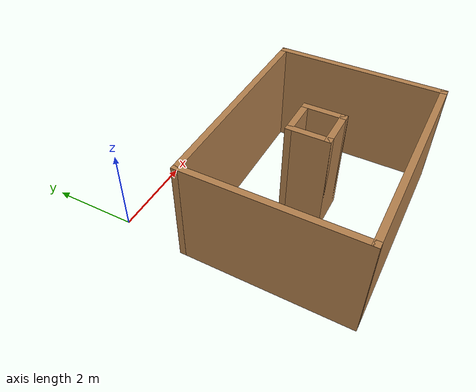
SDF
<?xml version='1.0'?>
<sdf version='1.7'>
  <model name='world'>
    <pose>2.33188 -2.75965 0 0 -0 0</pose>
    <link name='Wall_32'>
      <collision name='Wall_32_Collision'>
        <geometry>
          <box>
            <size>4 0.15 2.5</size>
          </box>
        </geometry>
        <pose>0 0 1.25 0 -0 0</pose>
      </collision>
      <visual name='Wall_32_Visual'>
        <pose>0 0 1.25 0 -0 0</pose>
        <geometry>
          <box>
            <size>4 0.15 2.5</size>
          </box>
        </geometry>
        <material>
          <script>
            <uri>file://media/materials/scripts/gazebo.material</uri>
            <name>Gazebo/Wood</name>
          </script>
          <ambient>1 1 1 1</ambient>
        </material>
        <meta>
          <layer>0</layer>
        </meta>
      </visual>
      <pose>-2.425 -0.75965 0 0 -0 -1.5708</pose>
    </link>
    <link name='Wall_33'>
      <collision name='Wall_33_Collision'>
        <geometry>
          <box>
            <size>5 0.15 2.5</size>
          </box>
        </geometry>
        <pose>0 0 1.25 0 -0 0</pose>
      </collision>
      <visual name='Wall_33_Visual'>
        <pose>0 0 1.25 0 -0 0</pose>
        <geometry>
          <box>
            <size>5 0.15 2.5</size>
          </box>
        </geometry>
        <material>
          <script>
            <uri>file://media/materials/scripts/gazebo.material</uri>
            <name>Gazebo/Wood</name>
          </script>
          <ambient>1 1 1 1</ambient>
        </material>
        <meta>
          <layer>0</layer>
        </meta>
      </visual>
      <pose>0 -2.68465 0 0 -0 0</pose>
    </link>
    <link name='Wall_34'>
      <collision name='Wall_34_Collision'>
        <geometry>
          <box>
            <size>4 0.15 2.5</size>
          </box>
        </geometry>
        <pose>0 0 1.25 0 -0 0</pose>
      </collision>
      <visual name='Wall_34_Visual'>
        <pose>0 0 1.25 0 -0 0</pose>
        <geometry>
          <box>
            <size>4 0.15 2.5</size>
          </box>
        </geometry>
        <material>
          <script>
            <uri>file://media/materials/scripts/gazebo.material</uri>
            <name>Gazebo/Wood</name>
          </script>
          <ambient>1 1 1 1</ambient>
        </material>
        <meta>
          <layer>0</layer>
        </meta>
      </visual>
      <pose>2.425 -0.75965 0 0 -0 1.5708</pose>
    </link>
    <link name='Wall_35'>
      <collision name='Wall_35_Collision'>
        <geometry>
          <box>
            <size>5 0.15 2.5</size>
          </box>
        </geometry>
        <pose>0 0 1.25 0 -0 0</pose>
      </collision>
      <visual name='Wall_35_Visual'>
        <pose>0 0 1.25 0 -0 0</pose>
        <geometry>
          <box>
            <size>5 0.15 2.5</size>
          </box>
        </geometry>
        <material>
          <script>
            <uri>file://media/materials/scripts/gazebo.material</uri>
            <name>Gazebo/Wood</name>
          </script>
          <ambient>1 1 1 1</ambient>
        </material>
        <meta>
          <layer>0</layer>
        </meta>
      </visual>
      <pose>0 1.16535 0 0 -0 3.14159</pose>
    </link>
    <link name='Wall_49'>
      <collision name='Wall_49_Collision'>
        <geometry>
          <box>
            <size>1 0.15 2.5</size>
          </box>
        </geometry>
        <pose>0 0 1.25 0 -0 0</pose>
      </collision>
      <visual name='Wall_49_Visual'>
        <pose>0 0 1.25 0 -0 0</pose>
        <geometry>
          <box>
            <size>1 0.15 2.5</size>
          </box>
        </geometry>
        <material>
          <script>
            <uri>file://media/materials/scripts/gazebo.material</uri>
            <name>Gazebo/Wood</name>
          </script>
          <ambient>1 1 1 1</ambient>
        </material>
        <meta>
          <layer>0</layer>
        </meta>
      </visual>
      <pose>-0.336725 -0.62995 0 0 -0 -1.5708</pose>
    </link>
    <link name='Wall_50'>
      <collision name='Wall_50_Collision'>
        <geometry>
          <box>
            <size>1 0.15 2.5</size>
          </box>
        </geometry>
        <pose>0 0 1.25 0 -0 0</pose>
      </collision>
      <visual name='Wall_50_Visual'>
        <pose>0 0 1.25 0 -0 0</pose>
        <geometry>
          <box>
            <size>1 0.15 2.5</size>
          </box>
        </geometry>
        <material>
          <script>
            <uri>file://media/materials/scripts/gazebo.material</uri>
            <name>Gazebo/Wood</name>
          </script>
          <ambient>1 1 1 1</ambient>
        </material>
        <meta>
          <layer>0</layer>
        </meta>
      </visual>
      <pose>0.088275 -1.05495 0 0 -0 0</pose>
    </link>
    <link name='Wall_51'>
      <collision name='Wall_51_Collision'>
        <geometry>
          <box>
            <size>1 0.15 2.5</size>
          </box>
        </geometry>
        <pose>0 0 1.25 0 -0 0</pose>
      </collision>
      <visual name='Wall_51_Visual'>
        <pose>0 0 1.25 0 -0 0</pose>
        <geometry>
          <box>
            <size>1 0.15 2.5</size>
          </box>
        </geometry>
        <material>
          <script>
            <uri>file://media/materials/scripts/gazebo.material</uri>
            <name>Gazebo/Wood</name>
          </script>
          <ambient>1 1 1 1</ambient>
        </material>
        <meta>
          <layer>0</layer>
        </meta>
      </visual>
      <pose>0.513275 -0.62995 0 0 -0 1.5708</pose>
    </link>
    <link name='Wall_52'>
      <collision name='Wall_52_Collision'>
        <geometry>
          <box>
            <size>1 0.15 2.5</size>
          </box>
        </geometry>
        <pose>0 0 1.25 0 -0 0</pose>
      </collision>
      <visual name='Wall_52_Visual'>
        <pose>0 0 1.25 0 -0 0</pose>
        <geometry>
          <box>
            <size>1 0.15 2.5</size>
          </box>
        </geometry>
        <material>
          <script>
            <uri>file://media/materials/scripts/gazebo.material</uri>
            <name>Gazebo/Wood</name>
          </script>
          <ambient>1 1 1 1</ambient>
        </material>
        <meta>
          <layer>0</layer>
        </meta>
      </visual>
      <pose>0.088275 -0.20495 0 0 -0 3.14159</pose>
    </link>
    <static>1</static>
  </model>
</sdf>
